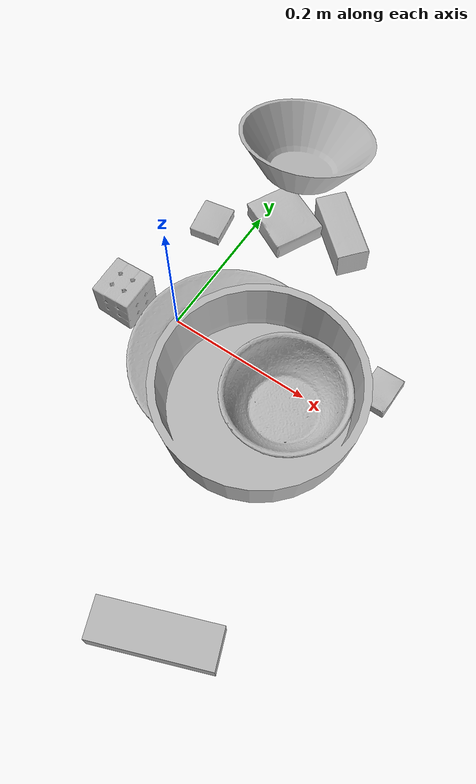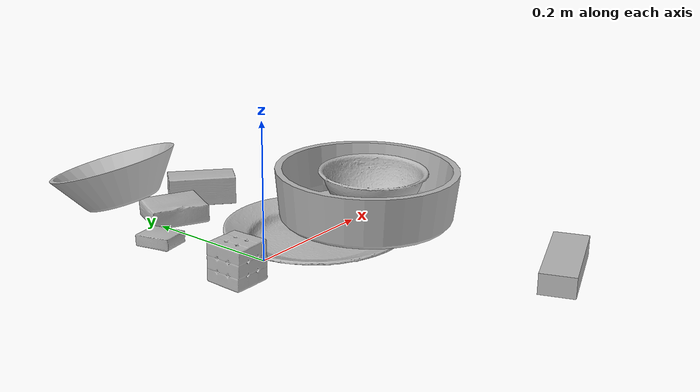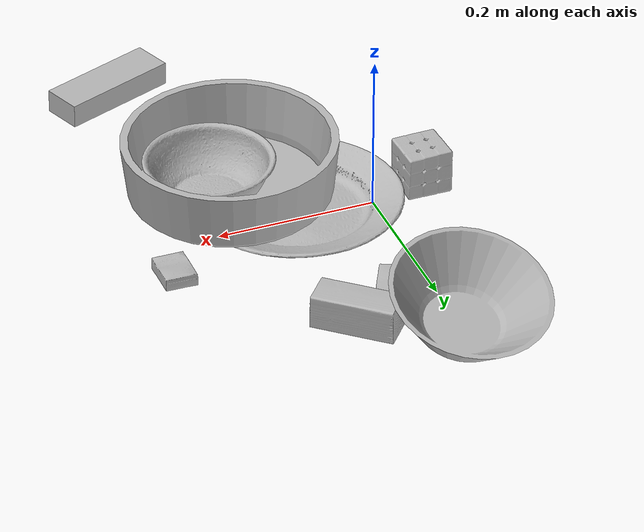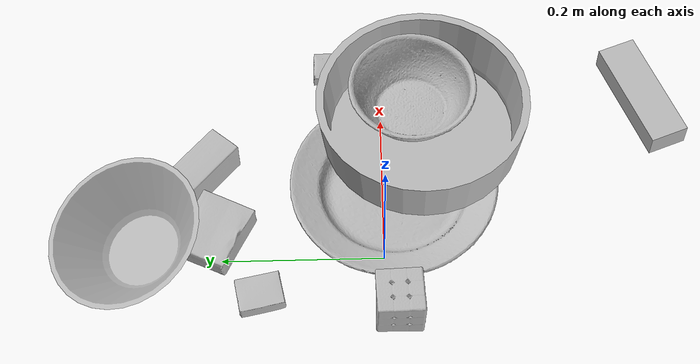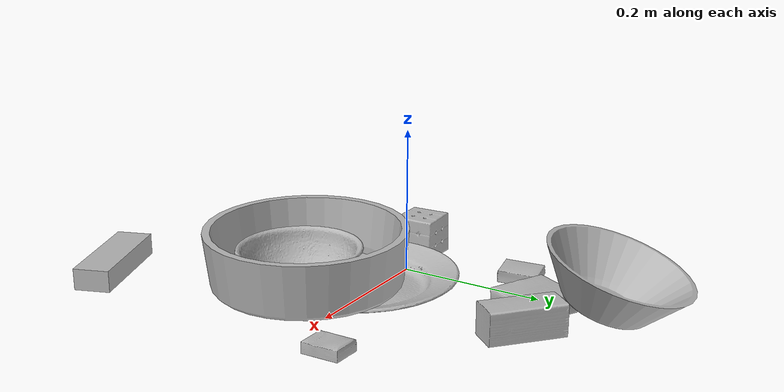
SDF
<sdf version="1.4">
  <world name="default">
    <light name="light1" type="point">
      <pose>0 0 1 0 0 0</pose>
      <diffuse>3 3 3 1</diffuse>
      <specular>3 3 3 1</specular>
    </light>
    <light name="light2" type="point">
      <pose>0 0.5 2 0 0 0</pose>
      <diffuse>1 1 1 1</diffuse>
      <specular>1 1 1 1</specular>
    </light>
    <light name="light3" type="point">
      <pose>0 0.5 2 0 0 0</pose>
      <diffuse>3 3 3 1</diffuse>
      <specular>3 3 3 1</specular>
    </light>
    <scene>
      <ambient>0.7 0.7 0.7</ambient>
    </scene>
    <model name="box1">
      <link name="link_box1">
        <collision name="default">
          <geometry>
            <mesh>
              <uri>model://rubiks_cube/collision_meshes/collision.obj</uri>
              <scale>1.0 1.0 1.0</scale>
            </mesh>
          </geometry>
          <surface>
            <friction>
              <ode>
                <mu>0.5</mu>
                <mu2>0.5</mu2>
              </ode>
            </friction>
          <contact>
        <ode>
            <max_vel>0</max_vel>
            <min_depth>0.0001</min_depth>
            <kp>1e8</kp>
        </ode>
    </contact></surface>
        </collision>
        <visual name="default">
          <geometry>
            <mesh>
              <uri>model://rubiks_cube/visual_meshes/visual.dae</uri>
              <scale>1.0 1.0 1.0</scale>
            </mesh>
          </geometry>
        </visual>
        <inertial>
          <mass>0.14937607944011688</mass>
          <pose>2.6721041649580002e-05 5.256967051536776e-05 -7.264316082000732e-06 -0.054671979216720346 -0.0981390543553378 -0.03445400726577695</pose>
          <inertia>
            <ixx>8.254031e-05</ixx>
            <iyy>8.2155384e-05</iyy>
            <izz>8.32243e-05</izz>
            <ixy>0</ixy>
            <ixz>0</ixz>
            <iyz>0</iyz>
          </inertia>
        </inertial>
      </link>
      <pose>-0.07075897604227066 -0.016713198274374008 0.028678957372903824 -4.160954166295117e-06 -1.730851923637685e-06 0.024633591385833396</pose>
    </model>
    <model name="box11">
      <link name="link_box11">
        <collision name="default">
          <geometry>
            <mesh>
              <uri>model://gelatin_box/collision_meshes/collision.obj</uri>
              <scale>1.0 1.0 1.0</scale>
            </mesh>
          </geometry>
          <surface>
            <friction>
              <ode>
                <mu>0.5</mu>
                <mu2>0.5</mu2>
              </ode>
            </friction>
          <contact>
        <ode>
            <max_vel>0</max_vel>
            <min_depth>0.0001</min_depth>
            <kp>1e8</kp>
        </ode>
    </contact></surface>
        </collision>
        <visual name="default">
          <geometry>
            <mesh>
              <uri>model://gelatin_box/visual_meshes/visual.dae</uri>
              <scale>1.0 1.0 1.0</scale>
            </mesh>
          </geometry>
        </visual>
        <inertial>
          <mass>0.1927502304315567</mass>
          <pose>0.0004319618456065655 0.00011156871914863586 -0.00036403213744051754 -0.0010503718519204429 -0.00475581822657324 0.016440557608202722</pose>
          <inertia>
            <ixx>0.00013606594</ixx>
            <iyy>9.7191194e-05</iyy>
            <izz>0.00020712269</izz>
            <ixy>0</ixy>
            <ixz>0</ixz>
            <iyz>0</iyz>
          </inertia>
        </inertial>
      </link>
      <pose>0.03342819586396217 0.20905080437660217 0.015168314799666405 0.005621047866687703 -0.007320605370162701 -2.034069538389358</pose>
    </model>
    <model name="box2">
      <link name="link_box2">
        <collision name="default">
          <geometry>
            <mesh>
              <uri>model://jenga/collision_meshes/collision.obj</uri>
              <scale>1.0 1.0 1.0</scale>
            </mesh>
          </geometry>
          <surface>
            <friction>
              <ode>
                <mu>0.5</mu>
                <mu2>0.5</mu2>
              </ode>
            </friction>
          <contact>
        <ode>
            <max_vel>0</max_vel>
            <min_depth>0.0001</min_depth>
            <kp>1e8</kp>
        </ode>
    </contact></surface>
        </collision>
        <visual name="default">
          <geometry>
            <mesh>
              <uri>model://jenga/visual_meshes/visual.dae</uri>
              <scale>1.0 1.0 1.0</scale>
            </mesh>
          </geometry>
        </visual>
        <inertial>
          <mass>0.17753760516643524</mass>
          <pose>-2.5028555228345795e-07 -0.00010250010382151231 -4.0923401684267446e-05 0.0 -7.342155186052628e-07 0.0</pose>
          <inertia>
            <ixx>4.912897e-05</ixx>
            <iyy>0.00033289654</iyy>
            <izz>0.00035539534</izz>
            <ixy>0</ixy>
            <ixz>0</ixz>
            <iyz>0</iyz>
          </inertia>
        </inertial>
      </link>
      <pose>0.2222217321395874 -0.33995282649993896 0.014999995939433575 1.6036262365343068e-08 2.3656754278122274e-09 0.3657222654834479</pose>
    </model>
    <model name="box21">
      <link name="link_box21">
        <collision name="default">
          <geometry>
            <mesh>
              <uri>model://cracker_box/collision_meshes/collision.obj</uri>
              <scale>0.25 0.25 0.25</scale>
            </mesh>
          </geometry>
          <surface>
            <friction>
              <ode>
                <mu>0.5</mu>
                <mu2>0.5</mu2>
              </ode>
            </friction>
          <contact>
        <ode>
            <max_vel>0</max_vel>
            <min_depth>0.0001</min_depth>
            <kp>1e8</kp>
        </ode>
    </contact></surface>
        </collision>
        <visual name="default">
          <geometry>
            <mesh>
              <uri>model://cracker_box/visual_meshes/visual.dae</uri>
              <scale>0.25 0.25 0.25</scale>
            </mesh>
          </geometry>
        </visual>
        <inertial>
          <mass>0.032025858759880066</mass>
          <pose>0.00023660347505938262 6.358561950037256e-05 -0.0004257383698131889 -0.0003162079452709603 -0.01110648960005095 0.0025467945380896087</pose>
          <inertia>
            <ixx>5.091218e-06</ixx>
            <iyy>8.406602e-06</iyy>
            <izz>1.1996991e-05</izz>
            <ixy>0</ixy>
            <ixz>0</ixz>
            <iyz>0</iyz>
          </inertia>
        </inertial>
      </link>
      <pose>0.27808985114097595 0.05917104706168175 0.009120450355112553 -0.011788097162929955 -0.007367103007272761 1.559522743478918</pose>
    </model>
    <model name="box3">
      <link name="link_box3">
        <collision name="default">
          <geometry>
            <mesh>
              <uri>model://wood_block/collision_meshes/collision.obj</uri>
              <scale>0.5 0.5 0.5</scale>
            </mesh>
          </geometry>
          <surface>
            <friction>
              <ode>
                <mu>0.5</mu>
                <mu2>0.5</mu2>
              </ode>
            </friction>
          <contact>
        <ode>
            <max_vel>0</max_vel>
            <min_depth>0.0001</min_depth>
            <kp>1e8</kp>
        </ode>
    </contact></surface>
        </collision>
        <visual name="default">
          <geometry>
            <mesh>
              <uri>model://wood_block/visual_meshes/visual.dae</uri>
              <scale>0.5 0.5 0.5</scale>
            </mesh>
          </geometry>
        </visual>
        <inertial>
          <mass>0.12936852872371674</mass>
          <pose>-2.9066577553749084e-06 -0.00028540470520965755 0.00013204290007706732 -0.052209755292171825 -0.0051926950820086835 -0.006861377939779924</pose>
          <inertia>
            <ixx>4.327867e-05</ixx>
            <iyy>0.00013671734</iyy>
            <izz>0.00013620593</izz>
            <ixy>0</ixy>
            <ixz>0</ixz>
            <iyz>0</iyz>
          </inertia>
        </inertial>
      </link>
      <pose>0.11333145946264267 0.22985507547855377 0.0226292721927166 -0.0052084151365353335 0.005718701543863149 2.433176357842975</pose>
    </model>
    <model name="box31">
      <link name="link_box31">
        <collision name="default">
          <geometry>
            <mesh>
              <uri>model://pudding_box/collision_meshes/collision.obj</uri>
              <scale>0.5 0.5 0.5</scale>
            </mesh>
          </geometry>
          <surface>
            <friction>
              <ode>
                <mu>0.5</mu>
                <mu2>0.5</mu2>
              </ode>
            </friction>
          <contact>
        <ode>
            <max_vel>0</max_vel>
            <min_depth>0.0001</min_depth>
            <kp>1e8</kp>
        </ode>
    </contact></surface>
        </collision>
        <visual name="default">
          <geometry>
            <mesh>
              <uri>model://pudding_box/visual_meshes/visual.dae</uri>
              <scale>0.5 0.5 0.5</scale>
            </mesh>
          </geometry>
        </visual>
        <inertial>
          <mass>0.02777985855937004</mass>
          <pose>0.00024474109522998333 0.00040339428232982755 -0.0002594413817860186 0.005213100847255284 -0.006603800106148706 0.020079825159203687</pose>
          <inertia>
            <ixx>7.850925e-06</ixx>
            <iyy>5.282159e-06</iyy>
            <izz>1.1593943e-05</izz>
            <ixy>0</ixy>
            <ixz>0</ixz>
            <iyz>0</iyz>
          </inertia>
        </inertial>
      </link>
      <pose>-0.049783382564783096 0.15177185833454132 0.009862905368208885 0.022348493525812 -0.01139175063662806 -2.950518084593187</pose>
    </model>
    <model name="plate1">
      <link name="link_plate1">
        <collision name="default">
          <geometry>
            <mesh>
              <uri>model://plate/collision_meshes/collision.obj</uri>
              <scale>1.0 1.0 1.0</scale>
            </mesh>
          </geometry>
          <surface>
            <friction>
              <ode>
                <mu>0.5</mu>
                <mu2>0.5</mu2>
              </ode>
            </friction>
          <contact>
        <ode>
            <max_vel>0</max_vel>
            <min_depth>0.0001</min_depth>
            <kp>1e8</kp>
        </ode>
    </contact></surface>
        </collision>
        <visual name="default">
          <geometry>
            <mesh>
              <uri>model://plate/visual_meshes/visual.dae</uri>
              <scale>1.0 1.0 1.0</scale>
            </mesh>
          </geometry>
        </visual>
        <inertial>
          <mass>0.18243028223514557</mass>
          <pose>-0.0006044635083526373 0.00027825916185975075 -0.0010561967501416802 0.002218802985991306 -0.003225472580220492 0.4526054178664253</pose>
          <inertia>
            <ixx>0.00085341244</ixx>
            <iyy>0.00084524986</iyy>
            <izz>0.0016691468</izz>
            <ixy>0</ixy>
            <ixz>0</ixz>
            <iyz>0</iyz>
          </inertia>
        </inertial>
      </link>
      <pose>0.0935920774936676 -0.014626283198595047 0.013950692489743233 0.0007975223712036359 -0.0032317231521939455 1.7994278783152509</pose>
    </model>
    <model name="bowl1">
      <link name="link_bowl1">
        <collision name="default">
          <geometry>
            <mesh>
              <uri>model://bowl_a/collision_meshes/collision.obj</uri>
              <scale>1.0 1.0 1.0</scale>
            </mesh>
          </geometry>
          <surface>
            <friction>
              <ode>
                <mu>0.5</mu>
                <mu2>0.5</mu2>
              </ode>
            </friction>
          <contact>
        <ode>
            <max_vel>0</max_vel>
            <min_depth>0.0001</min_depth>
            <kp>1e8</kp>
        </ode>
    </contact></surface>
        </collision>
        <visual name="default">
          <geometry>
            <mesh>
              <uri>model://bowl_a/visual_meshes/visual.dae</uri>
              <scale>1.0 1.0 1.0</scale>
            </mesh>
          </geometry>
        </visual>
        <inertial>
          <mass>0.33530884981155396</mass>
          <pose>0.00027867525932379067 4.7312179958680645e-05 -0.0013765293406322598 -0.0009805353119733814 -0.0010938238033148682 -0.19123781325276382</pose>
          <inertia>
            <ixx>0.0009546399</ixx>
            <iyy>0.0009605007</iyy>
            <izz>0.0016978635</izz>
            <ixy>0</ixy>
            <ixz>0</ixz>
            <iyz>0</iyz>
          </inertia>
        </inertial>
      </link>
      <pose>0.006343157030642033 0.30157509446144104 0.04601772874593735 0.30915632761930906 -0.019584989613971506 -2.8771533838346075</pose>
    </model>
    <model name="plate2">
      <link name="link_plate2">
        <collision name="default">
          <geometry>
            <mesh>
              <uri>model://pan_tefal/collision_meshes/collision.obj</uri>
              <scale>1.0 1.0 1.0</scale>
            </mesh>
          </geometry>
          <surface>
            <friction>
              <ode>
                <mu>0.5</mu>
                <mu2>0.5</mu2>
              </ode>
            </friction>
          <contact>
        <ode>
            <max_vel>0</max_vel>
            <min_depth>0.0001</min_depth>
            <kp>1e8</kp>
        </ode>
    </contact></surface>
        </collision>
        <visual name="default">
          <geometry>
            <mesh>
              <uri>model://pan_tefal/visual_meshes/visual.dae</uri>
              <scale>1.0 1.0 1.0</scale>
            </mesh>
          </geometry>
        </visual>
        <inertial>
          <mass>1.3054066896438599</mass>
          <pose>-0.00018001779972109944 3.2791245757834986e-05 -0.008514936082065105 0.0008190347553724757 -0.0003301394488099971 -0.33186691456643896</pose>
          <inertia>
            <ixx>0.00901116</ixx>
            <iyy>0.009069256</iyy>
            <izz>0.016587809</izz>
            <ixy>0</ixy>
            <ixz>0</ixz>
            <iyz>0</iyz>
          </inertia>
        </inertial>
      </link>
      <pose>0.1658969670534134 -0.051280051469802856 0.06432372331619263 -0.012228937577495358 -0.0009647844677689306 -1.8975677436525726</pose>
    </model>
    <model name="bowl2">
      <link name="link_bowl2">
        <collision name="default">
          <geometry>
            <mesh>
              <uri>model://bowl/collision_meshes/collision.obj</uri>
              <scale>1.0 1.0 1.0</scale>
            </mesh>
          </geometry>
          <surface>
            <friction>
              <ode>
                <mu>0.5</mu>
                <mu2>0.5</mu2>
              </ode>
            </friction>
          <contact>
        <ode>
            <max_vel>0</max_vel>
            <min_depth>0.0001</min_depth>
            <kp>1e8</kp>
        </ode>
    </contact></surface>
        </collision>
        <visual name="default">
          <geometry>
            <mesh>
              <uri>model://bowl/visual_meshes/visual.dae</uri>
              <scale>1.0 1.0 1.0</scale>
            </mesh>
          </geometry>
        </visual>
        <inertial>
          <mass>0.1096961572766304</mass>
          <pose>0.00020445209520403296 -0.0010302049340680242 -0.0008042648551054299 -0.015764066902751193 0.014546817497496476 0.7140421604823016</pose>
          <inertia>
            <ixx>0.00025198064</ixx>
            <iyy>0.00024635042</iyy>
            <izz>0.0004239182</izz>
            <ixy>0</ixy>
            <ixz>0</ixz>
            <iyz>0</iyz>
          </inertia>
        </inertial>
      </link>
      <pose>0.19672809541225433 -0.03979748860001564 0.06138847768306732 0.003738959774407326 -0.015096338642343731 2.7875325627391603</pose>
    </model>
  <physics type="ode">
      <max_contacts>50</max_contacts>
      <ode>
        <solver>
          <type>quick</type>
          <iters>75</iters>
        </solver>
        <constraints>
          <contact_max_correcting_vel>0</contact_max_correcting_vel>
          <contact_surface_layer>0</contact_surface_layer>
        </constraints>
      </ode>
    </physics></world>
</sdf>
